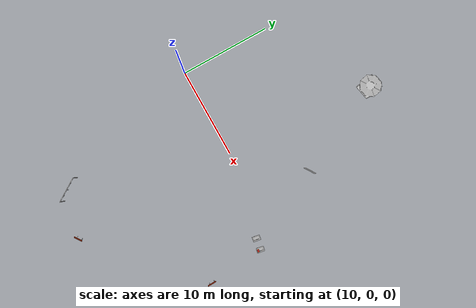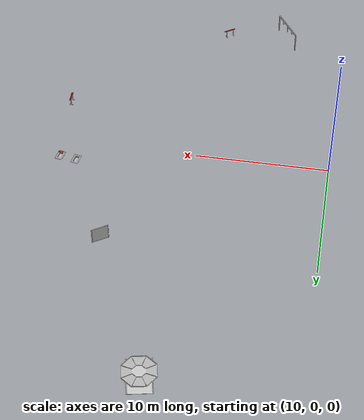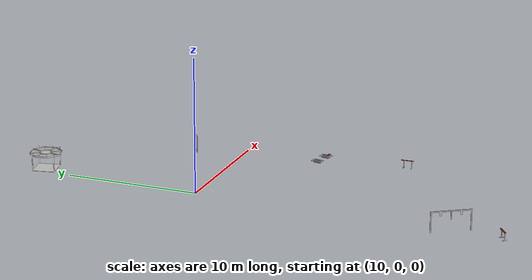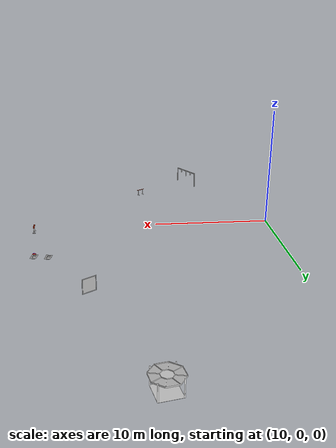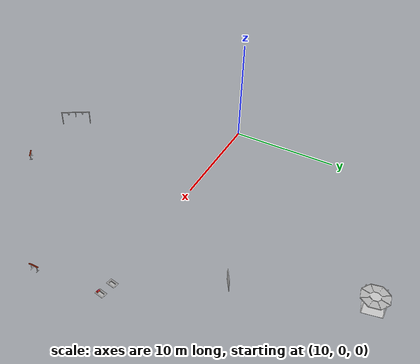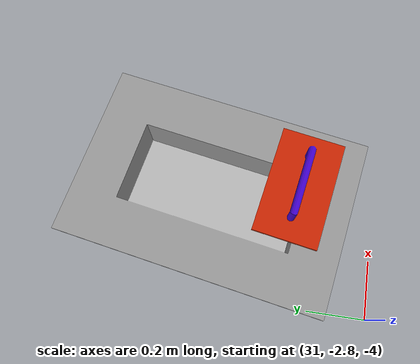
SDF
<sdf version="1.4">
 <world name="transdec">
  <physics name="default_physics" default="true" type="ode">
   <max_step_size>0.002</max_step_size>
   <real_time_factor>1</real_time_factor>
   <real_time_update_rate>500</real_time_update_rate>
  </physics>
  <scene>
   <ambient>0.5 0.5 0.5 1.0</ambient>
   <sky><clouds><speed>12</speed></clouds></sky>
   <shadows>1</shadows>
   <fog>
    <color>0.1 0.2 0.3 1.0</color>
    <type>linear</type>
    <density>0.05</density>
    <start>1</start>
    <end>40</end>
   </fog>
  </scene>
  <spherical_coordinates>
   <latitude_deg>56.71897669633431</latitude_deg>
   <longitude_deg>3.515625</longitude_deg>
  </spherical_coordinates>
  <light type="directional" name="sun">
   <pose>-50 -50 150 0 0 0</pose>
   <diffuse>0.5 0.5 0.5 1</diffuse>
   <specular>.1 .1 .1 1</specular>
   <direction>0.3 0.3 -1</direction>
   <cast_shadows>false</cast_shadows>
  </light>
  <light type="directional" name="sun_diffuse">
   <pose>-50 0 -150 0 0 0</pose>
   <diffuse>0.6 0.6 0.6 1</diffuse>
   <specular>0 0 0 1</specular>
   <direction>-0.3 -0.3 -1</direction>
   <cast_shadows>false</cast_shadows>
  </light>
  <include><uri>model://whirlpool_table</uri><pose>21 18 -2.85 0 0 0.2</pose></include>
  <include><uri>model://whirlpool_torpedo_target</uri><pose>26 7 -2.15 0 0 -1</pose></include>
  <include><uri>model://gate</uri><pose>14.75 -17.5 -0.5 0 0 -1</pose></include>
  <include><uri>model://path_marker</uri><pose>20 -20 -4.2 0 0 0.6</pose><name>path_marker_1</name></include>
  <include><uri>model://path_marker</uri><pose>32 -9 -4.2 0 0 1.6</pose><name>path_marker_2</name></include>
  <include><uri>model://whirlpool_bin_earth_1</uri><pose>30 -2 -4 0 0 1.4</pose></include>
  <include><uri>model://whirlpool_bin_abydos_2</uri><pose>30 -2 -4 0 0 1.4</pose></include>
  <include><uri>model://whirlpool_bin_lid</uri><pose>31.4 -2.2 -3.9 0 0 1.4</pose></include>
  <plugin name="sc_interface" filename="libuuv_sc_ros_interface_plugin.so"/>
 </world>
</sdf>

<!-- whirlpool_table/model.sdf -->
<sdf version="1.5">
  <model name="whirlpool_table">
    <static>true</static>
    <link name="base_link">

      <collision name="collision">
        <pose>0 0 0 0 0 0</pose>
        <geometry>
          <mesh>
            <uri>model://whirlpool_table/meshes/whirlpool_table.dae</uri>
          </mesh>
        </geometry>
      </collision>

      <visual name="visual">
        <cast_shadows>true</cast_shadows>
        <pose>0 0 0 0 0 0</pose>
        <geometry>
          <mesh>
            <uri>model://whirlpool_table/meshes/whirlpool_table.dae</uri>
          </mesh>
        </geometry>
      </visual>
    </link>
  </model>
</sdf>

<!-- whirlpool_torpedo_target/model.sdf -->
<sdf version="1.5">
  <model name="whirlpool_torpedo_target">
    <static>true</static>
    <link name="base_link">

      <collision name="collision">
        <pose>0 0 0 0 0 0</pose>
        <geometry>
          <mesh>
            <uri>model://whirlpool_torpedo_target/meshes/whirlpool_torpedo_target.dae</uri>
          </mesh>
        </geometry>
      </collision>

      <visual name="visual">
        <cast_shadows>true</cast_shadows>
        <pose>0 0 0 0 0 0</pose>
        <geometry>
          <mesh>
            <uri>model://whirlpool_torpedo_target/meshes/whirlpool_torpedo_target.dae</uri>
          </mesh>
        </geometry>
      </visual>
    </link>
  </model>
</sdf>

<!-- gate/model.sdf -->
<sdf version="1.5">
  <model name="gate">
    <static>true</static>
    <link name="base_link">

      <collision name="collision">
        <pose>0 0 0 0 0 0</pose>
        <geometry>
          <mesh>
            <uri>model://gate/meshes/gate.dae</uri>
          </mesh>
        </geometry>
      </collision>

      <visual name="visual">
        <cast_shadows>true</cast_shadows>
        <pose>0 0 0 0 0 0</pose>
        <geometry>
          <mesh>
            <uri>model://gate/meshes/gate.dae</uri>
          </mesh>
        </geometry>
      </visual>
    </link>
  </model>
</sdf>

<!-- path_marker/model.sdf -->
<sdf version="1.5">
  <model name="path_marker">
    <static>true</static>
    <link name="base_link">

      <collision name="collision">
        <pose>0 0 0 0 0 0</pose>
        <geometry>
          <mesh>
            <uri>model://path_marker/meshes/path_marker.dae</uri>
          </mesh>
        </geometry>
      </collision>

      <visual name="visual">
        <cast_shadows>true</cast_shadows>
        <pose>0 0 0 0 0 0</pose>
        <geometry>
          <mesh>
            <uri>model://path_marker/meshes/path_marker.dae</uri>
          </mesh>
        </geometry>
      </visual>
    </link>
  </model>
</sdf>

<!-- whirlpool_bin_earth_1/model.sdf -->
<sdf version="1.5">
  <model name="whirlpool_bin_earth_1">
    <static>true</static>
    <link name="base_link">

      <collision name="collision">
        <pose>0 0 0 0 0 0</pose>
        <geometry>
          <mesh>
            <uri>model://whirlpool_bin_earth_1/meshes/whirlpool_bin_earth_1.dae</uri>
          </mesh>
        </geometry>
      </collision>

      <visual name="visual">
        <cast_shadows>true</cast_shadows>
        <pose>0 0 0 0 0 0</pose>
        <geometry>
          <mesh>
            <uri>model://whirlpool_bin_earth_1/meshes/whirlpool_bin_earth_1.dae</uri>
          </mesh>
        </geometry>
      </visual>
    </link>
  </model>
</sdf>

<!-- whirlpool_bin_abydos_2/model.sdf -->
<sdf version="1.5">
  <model name="whirlpool_bin_abydos_2">
    <static>true</static>
    <link name="base_link">

      <collision name="collision">
        <pose>0 0 0 0 0 0</pose>
        <geometry>
          <mesh>
            <uri>model://whirlpool_bin_abydos_2/meshes/whirlpool_bin_abydos_2.dae</uri>
          </mesh>
        </geometry>
      </collision>

      <visual name="visual">
        <cast_shadows>true</cast_shadows>
        <pose>0 0 0 0 0 0</pose>
        <geometry>
          <mesh>
            <uri>model://whirlpool_bin_abydos_2/meshes/whirlpool_bin_abydos_2.dae</uri>
          </mesh>
        </geometry>
      </visual>
    </link>
  </model>
</sdf>

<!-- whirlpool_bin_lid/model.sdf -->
<sdf version="1.5">
  <model name="whirlpool_bin_lid">
    <static>true</static>
    <link name="base_link">

      <collision name="collision">
        <pose>0 0 0 0 0 0</pose>
        <geometry>
          <mesh>
            <uri>model://whirlpool_bin_lid/meshes/whirlpool_bin_lid.dae</uri>
          </mesh>
        </geometry>
      </collision>

      <visual name="visual">
        <cast_shadows>true</cast_shadows>
        <pose>0 0 0 0 0 0</pose>
        <geometry>
          <mesh>
            <uri>model://whirlpool_bin_lid/meshes/whirlpool_bin_lid.dae</uri>
          </mesh>
        </geometry>
      </visual>
    </link>
  </model>
</sdf>
